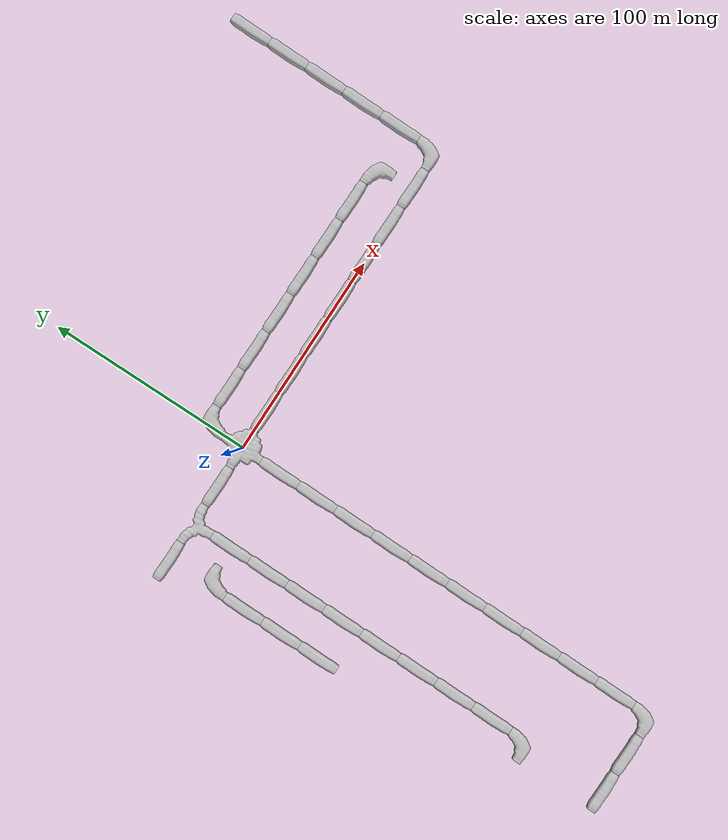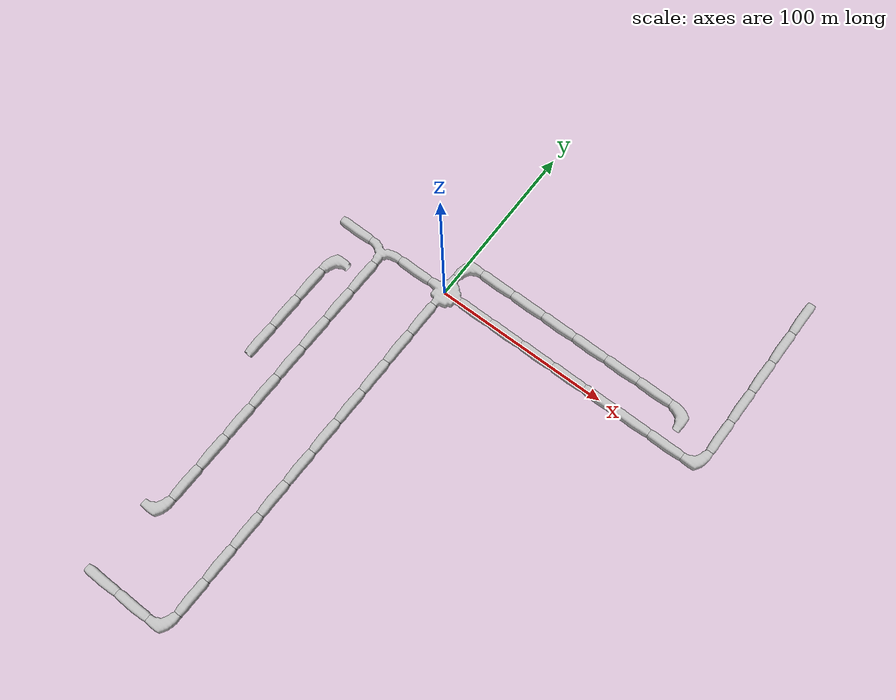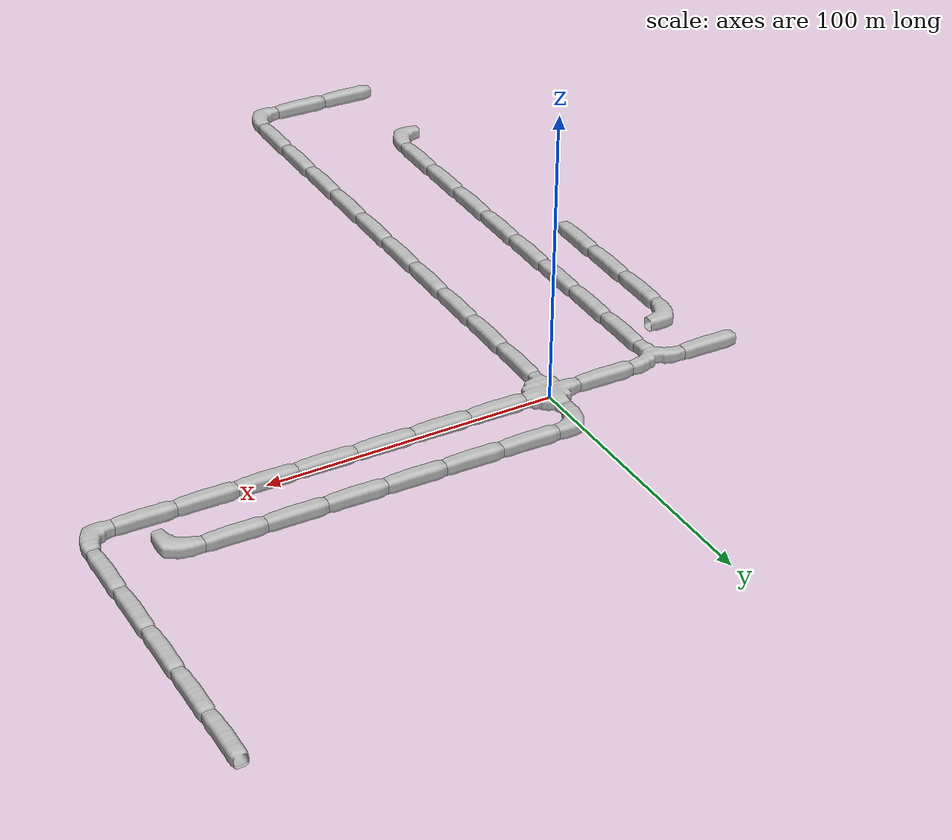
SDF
<sdf version="1.6">
 <world name="cave_8000_0">
  <include>
   <static>true</static>
   <name>cave_0_0</name>
   <pose>0 0 0 0 0 -1.5707963267948966</pose>
   <uri>model://cave_4way_20m</uri>
  </include>
  <include>
   <static>true</static>
   <name>cave_1_0</name>
   <pose>20 0 0 0 0 1.5707963267948966</pose>
   <uri>model://cave_straight_20m</uri>
  </include>
  <include>
   <static>true</static>
   <name>cave_2_0</name>
   <pose>40 0 0 0 0 1.5707963267948966</pose>
   <uri>model://cave_straight_20m</uri>
  </include>
  <include>
   <static>true</static>
   <name>cave_3_0</name>
   <pose>60 0 0 0 0 1.5707963267948966</pose>
   <uri>model://cave_straight_20m</uri>
  </include>
  <include>
   <static>true</static>
   <name>cave_4_0</name>
   <pose>80 0 0 0 0 1.5707963267948966</pose>
   <uri>model://cave_straight_20m</uri>
  </include>
  <include>
   <static>true</static>
   <name>cave_5_0</name>
   <pose>100 0 0 0 0 1.5707963267948966</pose>
   <uri>model://cave_straight_20m</uri>
  </include>
  <include>
   <static>true</static>
   <name>cave_6_0</name>
   <pose>120 0 0 0 0 1.5707963267948966</pose>
   <uri>model://cave_straight_20m</uri>
  </include>
  <include>
   <static>true</static>
   <name>cave_7_0</name>
   <pose>140 0 0 0 0 1.5707963267948966</pose>
   <uri>model://cave_straight_20m</uri>
  </include>
  <include>
   <static>true</static>
   <name>cave_8_0</name>
   <pose>160 0 0 0 0 1.5707963267948966</pose>
   <uri>model://cave_L_20m</uri>
  </include>
  <include>
   <static>true</static>
   <name>cave_8_1</name>
   <pose>160 20 0 0 0 0.0</pose>
   <uri>model://cave_straight_20m</uri>
  </include>
  <include>
   <static>true</static>
   <name>cave_8_2</name>
   <pose>160 40 0 0 0 0.0</pose>
   <uri>model://cave_straight_20m</uri>
  </include>
  <include>
   <static>true</static>
   <name>cave_8_3</name>
   <pose>160 60 0 0 0 0.0</pose>
   <uri>model://cave_straight_20m</uri>
  </include>
  <include>
   <static>true</static>
   <name>cave_8_4</name>
   <pose>160 80 0 0 0 0.0</pose>
   <uri>model://cave_straight_20m</uri>
  </include>
  <include>
   <static>true</static>
   <name>cave_8_5</name>
   <pose>160 100 0 0 0 0.0</pose>
   <uri>model://cave_straight_20m</uri>
  </include>
  <include>
   <static>true</static>
   <name>cave_0_-1</name>
   <pose>0 -20 0 0 0 0.0</pose>
   <uri>model://cave_straight_20m</uri>
  </include>
  <include>
   <static>true</static>
   <name>cave_0_-2</name>
   <pose>0 -40 0 0 0 0.0</pose>
   <uri>model://cave_straight_20m</uri>
  </include>
  <include>
   <static>true</static>
   <name>cave_0_-3</name>
   <pose>0 -60 0 0 0 0.0</pose>
   <uri>model://cave_straight_20m</uri>
  </include>
  <include>
   <static>true</static>
   <name>cave_0_-4</name>
   <pose>0 -80 0 0 0 0.0</pose>
   <uri>model://cave_straight_20m</uri>
  </include>
  <include>
   <static>true</static>
   <name>cave_0_-5</name>
   <pose>0 -100 0 0 0 0.0</pose>
   <uri>model://cave_straight_20m</uri>
  </include>
  <include>
   <static>true</static>
   <name>cave_0_-6</name>
   <pose>0 -120 0 0 0 0.0</pose>
   <uri>model://cave_straight_20m</uri>
  </include>
  <include>
   <static>true</static>
   <name>cave_0_-7</name>
   <pose>0 -140 0 0 0 0.0</pose>
   <uri>model://cave_straight_20m</uri>
  </include>
  <include>
   <static>true</static>
   <name>cave_0_-8</name>
   <pose>0 -160 0 0 0 0.0</pose>
   <uri>model://cave_straight_20m</uri>
  </include>
  <include>
   <static>true</static>
   <name>cave_0_-9</name>
   <pose>0 -180 0 0 0 0.0</pose>
   <uri>model://cave_straight_20m</uri>
  </include>
  <include>
   <static>true</static>
   <name>cave_0_-10</name>
   <pose>0 -200 0 0 0 0.0</pose>
   <uri>model://cave_straight_20m</uri>
  </include>
  <include>
   <static>true</static>
   <name>cave_0_-11</name>
   <pose>0 -220 0 0 0 1.5707963267948966</pose>
   <uri>model://cave_L_20m</uri>
  </include>
  <include>
   <static>true</static>
   <name>cave_-1_-11</name>
   <pose>-20 -220 0 0 0 1.5707963267948966</pose>
   <uri>model://cave_straight_20m</uri>
  </include>
  <include>
   <static>true</static>
   <name>cave_-2_-11</name>
   <pose>-40 -220 0 0 0 1.5707963267948966</pose>
   <uri>model://cave_straight_20m</uri>
  </include>
  <include>
   <static>true</static>
   <name>cave_-1_0</name>
   <pose>-20 0 0 0 0 1.5707963267948966</pose>
   <uri>model://cave_straight_20m</uri>
  </include>
  <include>
   <static>true</static>
   <name>cave_-2_0</name>
   <pose>-40 0 0 0 0 3.141592653589793</pose>
   <uri>model://cave_3way_20m</uri>
  </include>
  <include>
   <static>true</static>
   <name>cave_-2_-1</name>
   <pose>-40 -20 0 0 0 0.0</pose>
   <uri>model://cave_straight_20m</uri>
  </include>
  <include>
   <static>true</static>
   <name>cave_-2_-2</name>
   <pose>-40 -40 0 0 0 0.0</pose>
   <uri>model://cave_straight_20m</uri>
  </include>
  <include>
   <static>true</static>
   <name>cave_-2_-3</name>
   <pose>-40 -60 0 0 0 0.0</pose>
   <uri>model://cave_straight_20m</uri>
  </include>
  <include>
   <static>true</static>
   <name>cave_-2_-4</name>
   <pose>-40 -80 0 0 0 0.0</pose>
   <uri>model://cave_straight_20m</uri>
  </include>
  <include>
   <static>true</static>
   <name>cave_-2_-5</name>
   <pose>-40 -100 0 0 0 0.0</pose>
   <uri>model://cave_straight_20m</uri>
  </include>
  <include>
   <static>true</static>
   <name>cave_-2_-6</name>
   <pose>-40 -120 0 0 0 0.0</pose>
   <uri>model://cave_straight_20m</uri>
  </include>
  <include>
   <static>true</static>
   <name>cave_-2_-7</name>
   <pose>-40 -140 0 0 0 0.0</pose>
   <uri>model://cave_straight_20m</uri>
  </include>
  <include>
   <static>true</static>
   <name>cave_-2_-8</name>
   <pose>-40 -160 0 0 0 0.0</pose>
   <uri>model://cave_straight_20m</uri>
  </include>
  <include>
   <static>true</static>
   <name>cave_-2_-9</name>
   <pose>-40 -180 0 0 0 1.5707963267948966</pose>
   <uri>model://cave_L_20m</uri>
  </include>
  <include>
   <static>true</static>
   <name>cave_-3_-4</name>
   <pose>-60 -80 0 0 0 0.0</pose>
   <uri>model://cave_straight_20m</uri>
  </include>
  <include>
   <static>true</static>
   <name>cave_-3_-3</name>
   <pose>-60 -60 0 0 0 0.0</pose>
   <uri>model://cave_straight_20m</uri>
  </include>
  <include>
   <static>true</static>
   <name>cave_-3_-2</name>
   <pose>-60 -40 0 0 0 0.0</pose>
   <uri>model://cave_straight_20m</uri>
  </include>
  <include>
   <static>true</static>
   <name>cave_-3_-1</name>
   <pose>-60 -20 0 0 0 -1.5707963267948966</pose>
   <uri>model://cave_L_20m</uri>
  </include>
  <include>
   <static>true</static>
   <name>cave_-3_0</name>
   <pose>-60 0 0 0 0 1.5707963267948966</pose>
   <uri>model://cave_straight_20m</uri>
  </include>
  <include>
   <static>true</static>
   <name>cave_0_1</name>
   <pose>0 20 0 0 0 -1.5707963267948966</pose>
   <uri>model://cave_L_20m</uri>
  </include>
  <include>
   <static>true</static>
   <name>cave_1_1</name>
   <pose>20 20 0 0 0 1.5707963267948966</pose>
   <uri>model://cave_straight_20m</uri>
  </include>
  <include>
   <static>true</static>
   <name>cave_2_1</name>
   <pose>40 20 0 0 0 1.5707963267948966</pose>
   <uri>model://cave_straight_20m</uri>
  </include>
  <include>
   <static>true</static>
   <name>cave_3_1</name>
   <pose>60 20 0 0 0 1.5707963267948966</pose>
   <uri>model://cave_straight_20m</uri>
  </include>
  <include>
   <static>true</static>
   <name>cave_4_1</name>
   <pose>80 20 0 0 0 1.5707963267948966</pose>
   <uri>model://cave_straight_20m</uri>
  </include>
  <include>
   <static>true</static>
   <name>cave_5_1</name>
   <pose>100 20 0 0 0 1.5707963267948966</pose>
   <uri>model://cave_straight_20m</uri>
  </include>
  <include>
   <static>true</static>
   <name>cave_6_1</name>
   <pose>120 20 0 0 0 1.5707963267948966</pose>
   <uri>model://cave_straight_20m</uri>
  </include>
  <include>
   <static>true</static>
   <name>cave_7_1</name>
   <pose>140 20 0 0 0 3.141592653589793</pose>
   <uri>model://cave_L_20m</uri>
  </include>
 </world>
</sdf>
